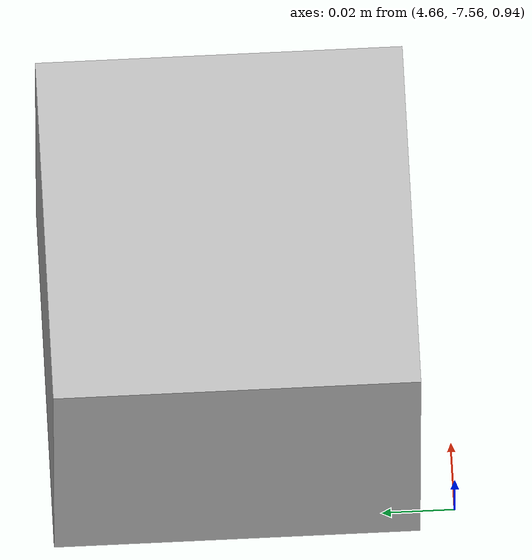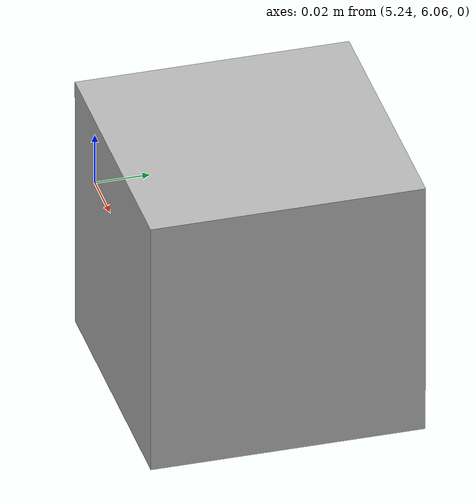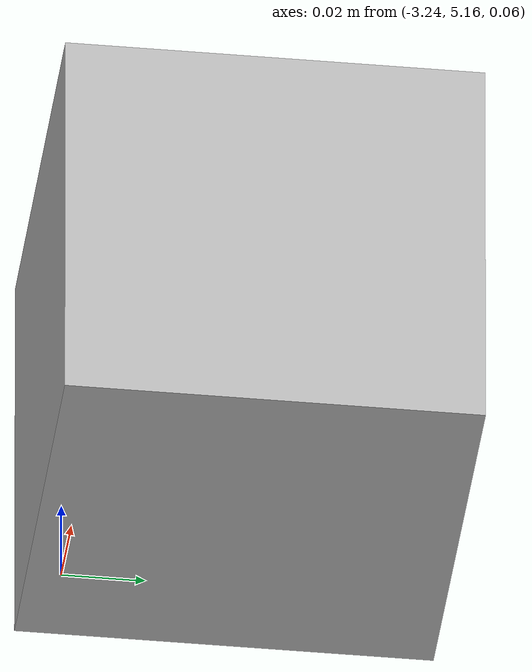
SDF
<?xml version="1.0" ?>
<sdf version="1.6">
	<model name="boxes">
		<link name="box1">
			<pose>6.0 -4.6 0.4 0 0 0</pose>
			<inertial>
				<inertia>
					<ixx>0.00050000</ixx>
					<iyy>0.00050000</iyy>
					<izz>0.00050000</izz>
				</inertia>
				<mass>0.10000000</mass>
			</inertial>
			<visual name="box1_vis">
				<geometry>
					<box>
						<size>0.1 0.1 0.1</size>
					</box>
				</geometry>
			</visual>
			<collision name="box1_col">
				<geometry>
					<box>
						<size>0.1 0.1 0.1</size>
					</box>
				</geometry>
			</collision>
		</link>
		<link name="box2">
			<pose>4.7 -7.5 1 0 0 0</pose>
			<inertial>
				<inertia>
					<ixx>0.00050000</ixx>
					<iyy>0.00050000</iyy>
					<izz>0.00050000</izz>
				</inertia>
				<mass>0.10000000</mass>
			</inertial>
			<visual name="box2_vis">
				<geometry>
					<box>
						<size>0.1 0.1 0.1</size>
					</box>
				</geometry>
			</visual>
			<collision name="box2_col">
				<geometry>
					<box>
						<size>0.1 0.1 0.1</size>
					</box>
				</geometry>
			</collision>
		</link>
		<link name="box3">
			<pose>5.3 6.1 0 0 0 0</pose>
			<inertial>
				<inertia>
					<ixx>0.00050000</ixx>
					<iyy>0.00050000</iyy>
					<izz>0.00050000</izz>
				</inertia>
				<mass>0.10000000</mass>
			</inertial>
			<visual name="box3_vis">
				<geometry>
					<box>
						<size>0.1 0.1 0.1</size>
					</box>
				</geometry>
			</visual>
			<collision name="box3_col">
				<geometry>
					<box>
						<size>0.1 0.1 0.1</size>
					</box>
				</geometry>
			</collision>
		</link>
		<link name="box5">
			<pose>-5.7 -4.0 0.2 0 0 0</pose>
			<inertial>
				<inertia>
					<ixx>0.00050000</ixx>
					<iyy>0.00050000</iyy>
					<izz>0.00050000</izz>
				</inertia>
				<mass>0.10000000</mass>
			</inertial>
			<visual name="box5_vis">
				<geometry>
					<box>
						<size>0.1 0.1 0.1</size>
					</box>
				</geometry>
			</visual>
			<collision name="box5_col">
				<geometry>
					<box>
						<size>0.1 0.1 0.1</size>
					</box>
				</geometry>
			</collision>
		</link>
		<link name="box4">
			<pose>-3.2 5.2 0.1 0 0 0</pose>
			<inertial>
				<inertia>
					<ixx>0.00050000</ixx>
					<iyy>0.00050000</iyy>
					<izz>0.00050000</izz>
				</inertia>
				<mass>0.10000000</mass>
			</inertial>
			<visual name="box4_vis">
				<geometry>
					<box>
						<size>0.1 0.1 0.1</size>
					</box>
				</geometry>
			</visual>
			<collision name="box4_col">
				<geometry>
					<box>
						<size>0.1 0.1 0.1</size>
					</box>
				</geometry>
			</collision>
		</link>
	</model>
</sdf>
